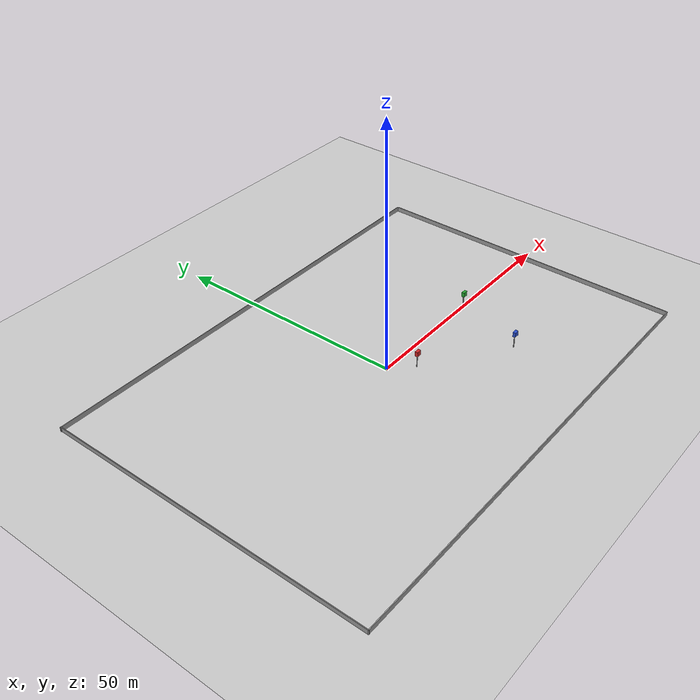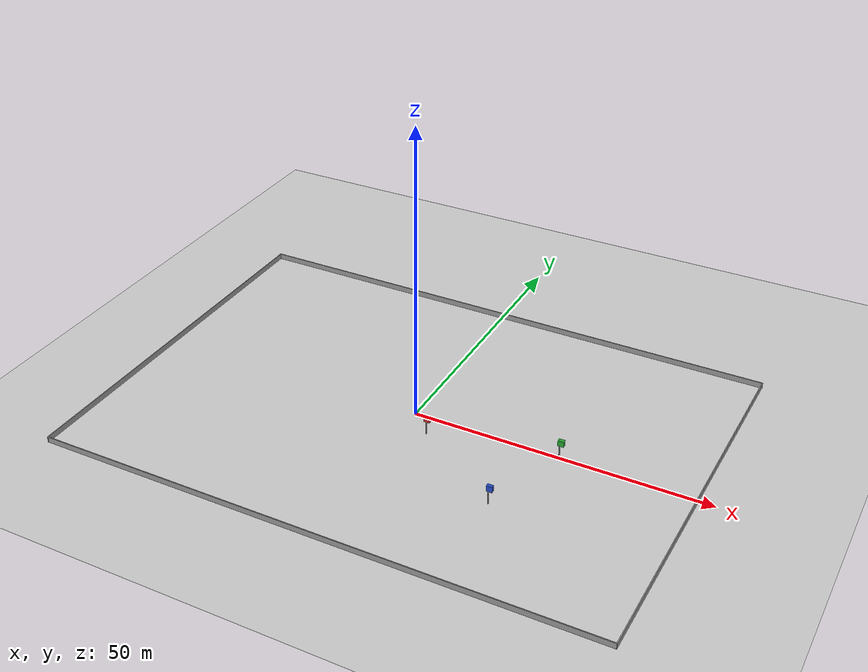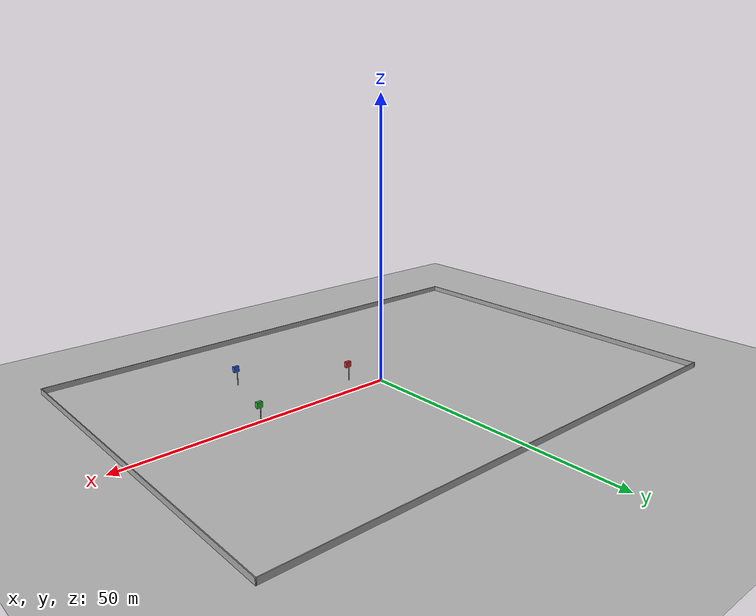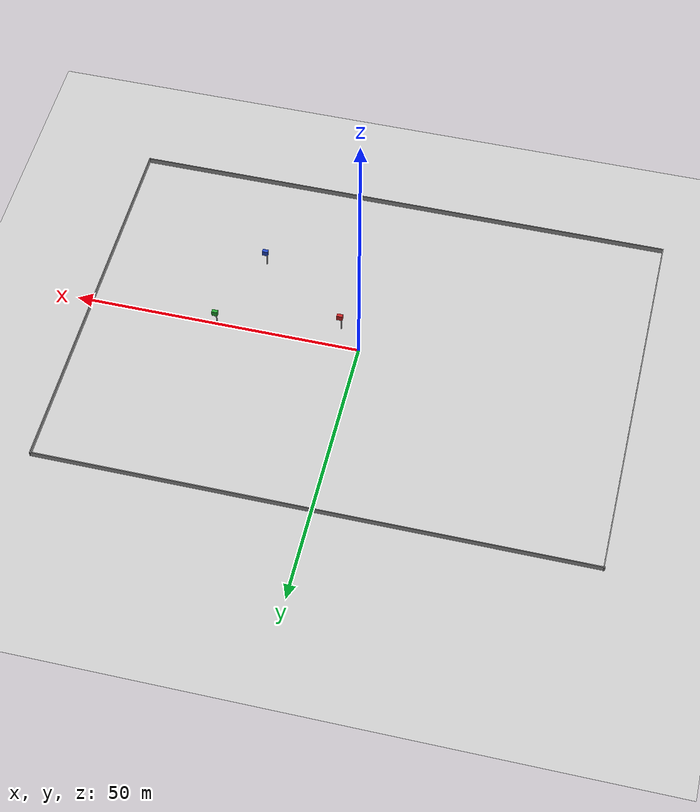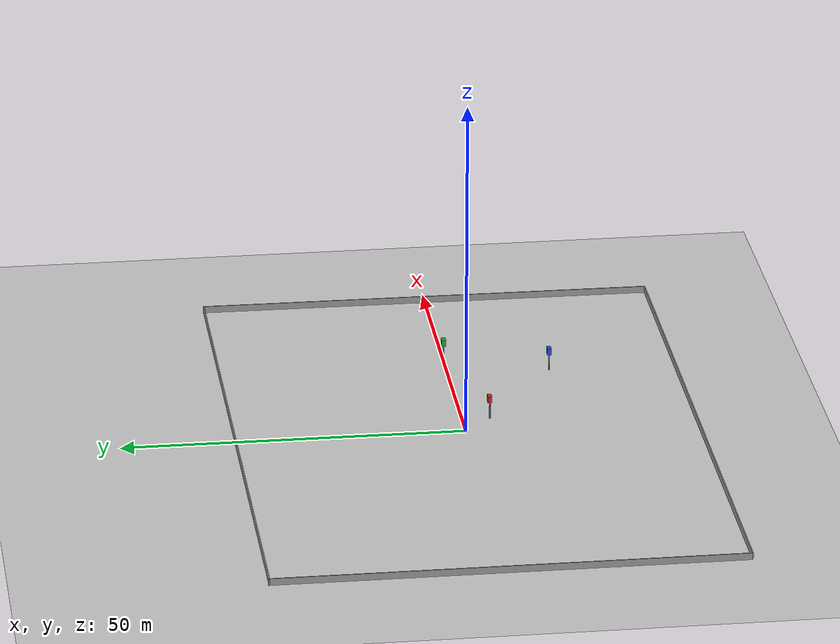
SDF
<?xml version="1.0" encoding="UTF-8"?>
<sdf version="1.4">
  <world name="default">
    <!-- *********************INITIAL POSE OF THE CAMERA***************************** -->
		<gui>
      <camera name="main_cam">
        <pose>3.516078 -55.086330 47.829880 0 0.8 1.57</pose>

      </camera>
    </gui>

    <!-- *********************GROUND AND SUN***************************** -->
    <include>
      <uri>model://ground_plane</uri>
    </include>

    <include>
      <uri>model://sun</uri>
    </include>

    <!-- *********************FLAGS***************************** -->
    <!-- 3 flags positionned at 30m (d) from the center of the environment. Their coordinates are determined easily: x = d*cos(angle), y = d*sin(angle) -->
    <include>
      <uri>model://red_flag</uri>
      <name>flag_1</name>
      <pose>4 -4 0 0 0 0</pose>
    <!--  Potential Field Demo  -->
    </include>

    <include>
      <uri>model://green_flag</uri>
      <name>flag_2</name>
      <pose>25 0 0 0 0 0</pose>
    <!--  Potential Field Demo  -->
    </include>

    <include>
      <uri>model://blue_flag</uri>
      <name>flag_3</name>
      <pose>20 -15 0 0 0 0</pose>
    <!--  Potential Field Demo  -->
    </include>

    <!-- **********************DISTANCE TO FLAGS PLUGIN**************************** -->
    <plugin name="dtfPlugin" filename="libdistance_to_flag_plugin.so">
      <nbFlags>3</nbFlags>
    </plugin>

    <!-- **********************WALLS**************************** -->
    <include>
      <uri>model://walls_evry</uri>
      <name>limits</name>
      <pose>0 0 0 0 0 0</pose>
    </include>
  </world>
</sdf>

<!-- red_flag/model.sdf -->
<sdf version="1.4">
  <model name="flag">
    <static>true</static>
    <link name="flag">
      <visual name="base">
        <pose>0 0 1.5 0 0 0</pose>
        <geometry>
          <cylinder>
            <radius>0.1</radius>
            <length>3</length>
          </cylinder>
        </geometry>

        <!-- BLACK -->
        <material>
          <ambient>0 0 0 1</ambient>
        </material>
      </visual>

      <visual name="top">
        <pose>0.25 0 3 0 0 0</pose>
        <geometry>
          <box>
            <size>1 0.6 1</size>
          </box>
        </geometry>

        <!-- RED -->
        <material>
          <script>
            <uri>file://media/materials/scripts/gazebo.material</uri>
            <name>Gazebo/Red</name>
          </script>
        </material>

      </visual>
    </link>
  </model>
</sdf>

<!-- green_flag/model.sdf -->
<sdf version="1.4">
  <model name="flag">
    <static>true</static>
    <link name="flag">
      <visual name="base">
        <pose>0 0 1.5 0 0 0</pose>
        <geometry>
          <cylinder>
            <radius>0.1</radius>
            <length>3</length>
          </cylinder>
        </geometry>

        <!-- BLACK -->
        <material>
          <ambient>0 0 0 1</ambient>
        </material>
      </visual>

      <visual name="top">
        <pose>0.25 0 3 0 0 0</pose>
        <geometry>
          <box>
            <size>1 0.6 1</size>
          </box>
        </geometry>

        <!-- GREEN -->
        <material>
          <script>
            <uri>file://media/materials/scripts/gazebo.material</uri>
            <name>Gazebo/Green</name>
          </script>
        </material>

      </visual>
    </link>
  </model>
</sdf>

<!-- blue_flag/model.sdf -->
<sdf version="1.4">
  <model name="flag">
    <static>true</static>
    <link name="flag">
      <visual name="base">
        <pose>0 0 1.5 0 0 0</pose>
        <geometry>
          <cylinder>
            <radius>0.1</radius>
            <length>3</length>
          </cylinder>
        </geometry>

        <!-- BLACK -->
        <material>
          <ambient>0 0 0 1</ambient>
        </material>
      </visual>

      <visual name="top">
        <pose>0.25 0 3 0 0 0</pose>
        <geometry>
          <box>
            <size>1 0.6 1</size>
          </box>
        </geometry>

        <!-- BLUE -->
        <material>
          <script>
            <uri>file://media/materials/scripts/gazebo.material</uri>
            <name>Gazebo/Blue</name>
          </script>
        </material>

      </visual>
    </link>
  </model>
</sdf>

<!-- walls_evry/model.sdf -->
<sdf version='1.6'>
  <model name='walls_evry'>
    <pose frame=''>0.580204 -5.79028 0 0 -0 0</pose>
    <link name='Wall_0'>
      <collision name='Wall_0_Collision'>
        <geometry>
          <box>
            <size>95 0.15 1</size>
          </box>
        </geometry>
        <pose frame=''>0 0 0.5 0 -0 0</pose>
      </collision>
      <visual name='Wall_0_Visual'>
        <pose frame=''>0 0 0.5 0 -0 0</pose>
        <geometry>
          <box>
            <size>95 0.15 1</size>
          </box>
        </geometry>
        <material>
          <script>
            <uri>file://media/materials/scripts/gazebo.material</uri>
            <name>Gazebo/Grey</name>
          </script>
          <ambient>1 1 1 1</ambient>
        </material>
        <meta>
          <layer>0</layer>
        </meta>
      </visual>
      <pose frame=''>-0.000204 33.4423 0 0 -0 0</pose>
    </link>
    <link name='Wall_1'>
      <collision name='Wall_1_Collision'>
        <geometry>
          <box>
            <size>67.1433 0.15 1</size>
          </box>
        </geometry>
        <pose frame=''>0 0 0.5 0 -0 0</pose>
      </collision>
      <visual name='Wall_1_Visual'>
        <pose frame=''>0 0 0.5 0 -0 0</pose>
        <geometry>
          <box>
            <size>67.1433 0.15 1</size>
          </box>
        </geometry>
        <material>
          <script>
            <uri>file://media/materials/scripts/gazebo.material</uri>
            <name>Gazebo/Grey</name>
          </script>
          <ambient>1 1 1 1</ambient>
        </material>
        <meta>
          <layer>0</layer>
        </meta>
      </visual>
      <pose frame=''>47.2433 -0.053719 0 0 -0 -1.57621</pose>
    </link>
    <link name='Wall_2'>
      <collision name='Wall_2_Collision'>
        <geometry>
          <box>
            <size>94.5 0.15 1</size>
          </box>
        </geometry>
        <pose frame=''>0 0 0.5 0 -0 0</pose>
      </collision>
      <visual name='Wall_2_Visual'>
        <pose frame=''>0 0 0.5 0 -0 0</pose>
        <geometry>
          <box>
            <size>94.5 0.15 1</size>
          </box>
        </geometry>
        <material>
          <script>
            <uri>file://media/materials/scripts/gazebo.material</uri>
            <name>Gazebo/Grey</name>
          </script>
          <ambient>1 1 1 1</ambient>
        </material>
        <meta>
          <layer>0</layer>
        </meta>
      </visual>
      <pose frame=''>-0.113204 -33.5497 0 0 -0 3.14159</pose>
    </link>
    <link name='Wall_3'>
      <collision name='Wall_3_Collision'>
        <geometry>
          <box>
            <size>67.25 0.15 1</size>
          </box>
        </geometry>
        <pose frame=''>0 0 0.5 0 -0 0</pose>
      </collision>
      <visual name='Wall_3_Visual'>
        <pose frame=''>0 0 0.5 0 -0 0</pose>
        <geometry>
          <box>
            <size>67.25 0.15 1</size>
          </box>
        </geometry>
        <material>
          <script>
            <uri>file://media/materials/scripts/gazebo.material</uri>
            <name>Gazebo/Grey</name>
          </script>
          <ambient>1 1 1 1</ambient>
        </material>
        <meta>
          <layer>0</layer>
        </meta>
      </visual>
      <pose frame=''>-47.2882 0.000281 0 0 -0 1.5708</pose>
    </link>
    <static>1</static>
  </model>
</sdf>
